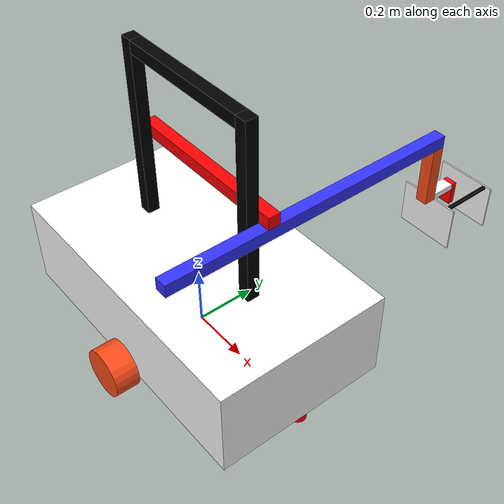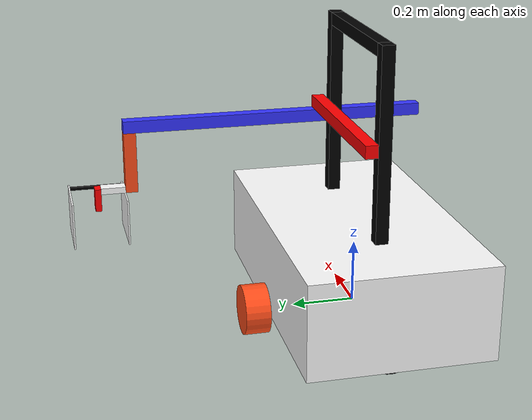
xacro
<?xml version="1.0"?>
<robot xmlns:xacro="http://www.ros.org/wiki/xacro"  name="robot">

    <xacro:include filename="robot_core.xacro" />
    <xacro:include filename="gazebo_control.xacro" />
    <xacro:include filename="lidar.xacro" />
    <xacro:include filename="slider_z_con.xacro" />
    <xacro:include filename="slider_y_con.xacro" />
    <xacro:include filename="airbrush_con.xacro" />

    <!--xacro:drive_controller/-->
    <ros2_control name="gripper_robot_gazebo_system" type="system">
        <hardware>
            <plugin>gazebo_ros2_control/GazeboSystem</plugin>
        </hardware>
        <xacro:sliderz/>
        <xacro:slidery/>
        <xacro:airbrush/>
    </ros2_control>
    <xacro:robot_controller/>
</robot>

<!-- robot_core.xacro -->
<robot xmlns:xacro="http://www.ros.org/wiki/xacro" >
    <xacro:include filename="inertial_macros.xacro" />

    <material name="white">
        <color rgba="1 1 1 1" />
    </material>

    <material name="orange">
        <color rgba="1 0.3 0.1 1"/>
    </material>

    <material name="blue">Z
        <color rgba="0.2 0.2 1 1"/>
    </material>

    <material name="black">
        <color rgba="0 0 0 1"/>
    </material>

    <material name="red">
        <color rgba="1 0 0 1"/>
    </material>

    <!-- BASE LINK -->

    <link name="base_link">

    </link>

    <joint name="chassis_joint" type="fixed">
        <parent link="base_link"/>
        <child link="body"/>
        <origin xyz="0 0 0"/>
    </joint>

    <link name="body">
        <visual>
            <origin xyz="0 0 0.15" rpy="0 0 0"/>
            <geometry>
                <box size="1 0.58 0.3"/>
            </geometry>
            <material name="white"/>
        </visual>
        <collision>
            <origin xyz="0 0 0.15" rpy="0 0 0"/>
            <geometry>
                <box size="1 0.58 0.3"/>
            </geometry>
        </collision>
        <xacro:inertial_box mass="30" x="1" y="0.58" z="0.3">
            <origin xyz="0 0 0.15" rpy="0 0 0"/>
        </xacro:inertial_box>
    </link>
    <gazebo reference="body">
        <material>Gazebo/White</material>
    </gazebo>

    <!-- LINEAR GUIDE FRAME -->

    <joint name="linear_front_joint" type="fixed">
        <parent link="body"/>
        <child link="linear_front"/>
        <origin xyz="0.25 0 0.3"/>
    </joint>

    <link name="linear_front">
        <visual>
            <origin xyz="0 0 0.3" rpy="0 0 0"/>
            <geometry>
                <box size="0.04 0.04 0.6"/>
            </geometry>
            <material name="black"/>
        </visual>
        <collision>
            <origin xyz="0 0 0.3" rpy="0 0 0"/>
            <geometry>
                <box size="0.04 0.04 0.6"/>
            </geometry>
        </collision>
        <xacro:inertial_box mass="0.5" x="0.04" y="0.04" z="0.6">
            <origin xyz="0 0 0.3" rpy="0 0 0"/>
        </xacro:inertial_box>
    </link>
    <gazebo reference="linear_front">
        <material>Gazebo/Black</material>
    </gazebo>

    <joint name="linear_back_joint" type="fixed">
        <parent link="body"/>
        <child link="linear_back"/>
        <origin xyz="-0.25 0 0.3"/>
    </joint>

    <link name="linear_back">
        <visual>
            <origin xyz="0 0 0.3" rpy="0 0 0"/>
            <geometry>
                <box size="0.04 0.04 0.6"/>
            </geometry>
            <material name="black"/>
        </visual>
        <collision>
            <origin xyz="0 0 0.3" rpy="0 0 0"/>
            <geometry>
                <box size="0.04 0.04 0.6"/>
            </geometry>
        </collision>
        <xacro:inertial_box mass="0.5" x="0.04" y="0.04" z="0.6">
            <origin xyz="0 0 0.3" rpy="0 0 0"/>
        </xacro:inertial_box>
    </link>
    <gazebo reference="linear_back">
        <material>Gazebo/Black</material>
    </gazebo>

    <joint name="linear_top_joint" type="fixed">
        <parent link="body"/>
        <child link="linear_top"/>
        <origin xyz="0 0 0.88"/>
    </joint>

    <link name="linear_top">
        <visual>
            <origin xyz="0 0 0" rpy="0 0 0"/>
            <geometry>
                <box size="0.46 0.04 0.04"/>
            </geometry>
            <material name="black"/>
        </visual>
        <collision>
            <origin xyz="0 0 0" rpy="0 0 0"/>
            <geometry>
                <box size="0.46 0.04 0.04"/>
            </geometry>
        </collision>
        <xacro:inertial_box mass="0.25" x="0.46" y="0.04" z="0.04">
            <origin xyz="0 0 0" rpy="0 0 0"/>
        </xacro:inertial_box>
    </link>
    <gazebo reference="linear_top">
        <material>Gazebo/Black</material>
    </gazebo>

    <!-- LINEAR SLIDER -->

    <joint name="slider_z_joint" type="prismatic">
        <parent link="linear_back"/>
        <child link="slider_z"/>
        <origin xyz="0 0.02 0.02"/>
        <axis xyz="0 0 1"/>
	    <limit lower="0.04" upper="0.5" velocity="0.1" effort="1" />
        <dynamics damping="1" friction="10"/>
    </joint>

    <link name="slider_z">
        <visual>
            <origin xyz="0.27 0.02 0" rpy="0 0 0"/>
            <geometry>
                <box size="0.58 0.04 0.04"/>
            </geometry>
            <material name="red"/>
        </visual>
        <collision>
            <origin xyz="0.27 0.02 0" rpy="0 0 0"/>
            <geometry>
                <box size="0.58 0.04 0.04"/>
            </geometry>
        </collision>
        <xacro:inertial_box mass="0.5" x="0.58" y="0.04" z="0.04">
            <origin xyz="0.27 0.02 0" rpy="0 0 0"/>
        </xacro:inertial_box>
    </link>
    <gazebo reference="slider_z">
        <material>Gazebo/Red</material>
    </gazebo>

    <joint name="slider_y_joint" type="prismatic">
        <parent link="slider_z"/>
        <child link="slider_y"/>
        <origin xyz="0.52 0.02 0"/>
        <axis xyz="0 1 0"/>
	    <limit lower="0.15" upper="0.66" velocity="0.1" effort="1" />
        <dynamics damping="1" friction="1"/>
    </joint>

    <link name="slider_y">
        <visual>
            <origin xyz="0.02 -0.25 -0.04" rpy="0 0 0"/>
            <geometry>
                <box size="0.04 1 0.04"/>
            </geometry>
            <material name="blue"/>
        </visual>
        <collision>
            <origin xyz="0.02 -0.25 -0.04" rpy="0 0 0"/>
            <geometry>
                <box size="0.04 1 0.04"/>
            </geometry>
        </collision>
        <xacro:inertial_box mass="0.25" x="0.04" y="1" z="0.04">
            <origin xyz="0.02 -0.25 -0.04" rpy="0 0 0"/>
        </xacro:inertial_box>
    </link>
    <gazebo reference="slider_y">
        <material>Gazebo/Blue</material>
    </gazebo>

    <!-- Airbrush -->

    <joint name="airbrush_joint" type="revolute">
        <parent link="slider_y"/>
        <child link="frame"/>
        <origin xyz="0.02 0.23 -0.06" />
        <axis xyz="0 0 1"/>
        <limit lower="${-pi/4}" upper="${pi/4}" velocity="0.1" effort="100" />
        <dynamics damping="1" friction="0"/>
    </joint>

    <link name="frame">
        <visual>
            <origin xyz="0 0 -0.1" rpy="0 0 0"/>
            <geometry>
                <box size="0.04 0.04 0.2"/>
            </geometry>
            <material name="orange"/>
        </visual>
        <collision>
            <origin xyz="0 0 -0.1" rpy="0 0 0"/>
            <geometry>
                <box size="0.04 0.04 0.2"/>
            </geometry>
        </collision>
        <xacro:inertial_box mass="0.005" x="0.04" y="0.04" z="0.2">
            <origin xyz="0 0 -0.1" rpy="0 0 0"/>
        </xacro:inertial_box>
    </link>
    <gazebo reference="frame">
        <material>Gazebo/Orange</material>
    </gazebo>

    <joint name="plate1_joint" type="fixed">
        <parent link="frame"/>
        <child link="plate1"/>
        <origin xyz="0 0 -0.2" rpy="0 0 0"/>
    </joint>

    <link name="plate1">
        <visual>
            <origin xyz="0 0.06 0.01" rpy="0 0 0"/>
            <geometry>
                <box size="0.04 0.08 0.02"/>
            </geometry>
            <material name="white"/>
        </visual>
        <collision>
            <origin xyz="0 0.06 0.01" rpy="0 0 0"/>
            <geometry>
                <box size="0.04 0.08 0.02"/>
            </geometry>
        </collision>
        <xacro:inertial_box mass="0.005" x="0.04" y="0.08" z="0.02">
            <origin xyz="0 0.06 0.01" rpy="0 0 0"/>
        </xacro:inertial_box>
    </link>
    <gazebo reference="plate1">
        <material>Gazebo/White</material>
    </gazebo>

    <joint name="plate2_joint" type="fixed">
        <parent link="plate1"/>
        <child link="plate2"/>
        <origin xyz="0 0 0" rpy="0 0 0"/>
    </joint>

    <link name="plate2">
        <visual>
            <origin xyz="0 0.0225 -0.075" rpy="0 0 0"/>
            <geometry>
                <box size="0.2 0.005 0.15"/>
            </geometry>
            <material name="white"/>
        </visual>
        <collision>
            <origin xyz="0 0.0225 -0.075" rpy="0 0 0"/>
            <geometry>
                <box size="0.2 0.005 0.15"/>
            </geometry>
        </collision>
        <xacro:inertial_box mass="0.005" x="0.2" y="0.005" z="0.15">
            <origin xyz="0 0.0225 -0.075" rpy="0 0 0"/>
        </xacro:inertial_box>
    </link>
    <gazebo reference="plate2">
        <material>Gazebo/Black</material>
    </gazebo>

    <joint name="plate3_joint" type="fixed">
        <parent link="plate1"/>
        <child link="plate3"/>
        <origin xyz="0 0 0" rpy="0 0 0"/>
    </joint>

    <link name="plate3">
        <visual>
            <origin xyz="0 0.1975 -0.075" rpy="0 0 0"/>
            <geometry>
                <box size="0.2 0.005 0.15"/>
            </geometry>
            <material name="white"/>
        </visual>
        <collision>
            <origin xyz="0 0.1975 -0.075" rpy="0 0 0"/>
            <geometry>
                <box size="0.2 0.005 0.15"/>
            </geometry>
        </collision>
        <xacro:inertial_box mass="0.005" x="0.2" y="0.005" z="0.15">
            <origin xyz="0 0.1975 -0.075" rpy="0 0 0"/>
        </xacro:inertial_box>
    </link>
    <gazebo reference="plate3">
        <material>Gazebo/Black</material>
    </gazebo>

    <joint name="plate4_joint" type="fixed">
        <parent link="plate1"/>
        <child link="plate4"/>
        <origin xyz="0 0 0" rpy="0 0 0"/>
    </joint>

    <link name="plate4">
        <visual>
            <origin xyz="0.075 0.11 -0.005" rpy="0 0 0"/>
            <geometry>
                <box size="0.01 0.17 0.01"/>
            </geometry>
            <material name="black"/>
        </visual>
        <collision>
            <origin xyz="0.075 0.11 -0.005" rpy="0 0 0"/>
            <geometry>
                <box size="0.01 0.17 0.01"/>
            </geometry>
        </collision>
        <xacro:inertial_box mass="0.005" x="0.01" y="0.17" z="0.01">
            <origin xyz="0.075 0.11 -0.005" rpy="0 0 0"/>
        </xacro:inertial_box>
    </link>
    <gazebo reference="plate4">
        <material>Gazebo/Black</material>
    </gazebo>

    <joint name="plate5_joint" type="fixed">
        <parent link="plate1"/>
        <child link="plate5"/>
        <origin xyz="0 0 0" rpy="0 0 0"/>
    </joint>

    <link name="plate5">
        <visual>
            <origin xyz="0 0.11 -0.02" rpy="0 0 0"/>
            <geometry>
                <box size="0.04 0.02 0.075"/>
            </geometry>
            <material name="red"/>
        </visual>
        <collision>
            <origin xyz="0 0.11 -0.02" rpy="0 0 0"/>
            <geometry>
                <box size="0.04 0.02 0.075"/>
            </geometry>
        </collision>
        <xacro:inertial_box mass="0.005" x="0.04" y="0.02" z="0.075">
            <origin xyz="0 0.11 -0.02" rpy="0 0 0"/>
        </xacro:inertial_box>
    </link>
    <gazebo reference="plate5">
        <material>Gazebo/Red</material>
    </gazebo>

    <!-- LEFT WHEEL -->

    <joint name="left_wheel_joint" type="continuous">
        <parent link="base_link"/>
        <child link="left_wheel"/>
        <origin xyz="0 0.33 0" rpy="-${pi/2} 0 0"/>
        <axis xyz="0 0 1"/>
    </joint>

    <link name="left_wheel">
        <visual>
            <geometry>
                <cylinder length="0.08" radius="0.08" />/>
            </geometry>
            <material name="orange"/>
        </visual>
        <collision>
            <geometry>
                <cylinder length="0.08" radius="0.08" />/>
            </geometry>
        </collision>
        <xacro:inertial_cylinder mass="0.5" length="0.08" radius="0.08">
            <origin xyz="0 0 0" rpy="0 0 0"/>
        </xacro:inertial_cylinder>
    </link>
    <gazebo reference="left_wheel">
        <material>Gazebo/Orange</material>
    </gazebo>

    <!-- RIGHT WHEEL -->

    <joint name="right_wheel_joint" type="continuous">
        <parent link="base_link"/>
        <child link="right_wheel"/>
        <origin xyz="0 -0.33 0" rpy="${pi/2} 0 0"/>
        <axis xyz="0 0 -1"/>
    </joint>

    <link name="right_wheel">
        <visual>
            <geometry>
                <cylinder length="0.08" radius="0.08" />/>
            </geometry>
            <material name="orange"/>
        </visual>
        <collision>
            <geometry>
                <cylinder length="0.08" radius="0.08" />/>
            </geometry>
        </collision>
        <xacro:inertial_cylinder mass="0.5" length="0.08" radius="0.08">
            <origin xyz="0 0 0" rpy="0 0 0"/>
        </xacro:inertial_cylinder>
    </link>
    <gazebo reference="right_wheel">
        <material>Gazebo/Orange</material>
    </gazebo>

    <!-- CASTER WHEEL FRONT -->

    <joint name="caster_wheel_front_joint" type="fixed">
        <parent link="body"/>
        <child link="caster_wheel_front"/>
        <origin xyz="0.35 0 0" rpy="0 0 0"/>
    </joint>

    <link name="caster_wheel_front">
        <visual>
            <geometry>
                <sphere radius="0.08" />
            </geometry>
            <material name="black"/>
        </visual>
        <collision>
            <geometry>
                <sphere radius="0.08" />
            </geometry>
        </collision>
        <xacro:inertial_sphere mass="0.5" radius="0.08">
            <origin xyz="0 0 0" rpy="0 0 0"/>
        </xacro:inertial_sphere>
    </link>
    <gazebo reference="caster_wheel_front">
        <material>Gazebo/Black</material>
        <mu1 value="0.001"/>
        <mu2 value="0.001"/>
    </gazebo>

    <!-- CASTER WHEEL BACK -->

    <joint name="caster_wheel_back_joint" type="fixed">
        <parent link="body"/>
        <child link="caster_wheel_back"/>
        <origin xyz="-0.35 0 0" rpy="0 0 0"/>
    </joint>

    <link name="caster_wheel_back">
        <visual>
            <geometry>
                <sphere radius="0.08" />
            </geometry>
            <material name="black"/>
        </visual>
        <collision>
            <geometry>
                <sphere radius="0.08" />
            </geometry>
        </collision>
        <xacro:inertial_sphere mass="0.5" radius="0.08">
            <origin xyz="0 0 0" rpy="0 0 0"/>
        </xacro:inertial_sphere>
    </link>
    <gazebo reference="caster_wheel_back">
        <material>Gazebo/Black</material>
        <mu1 value="0.001"/>
        <mu2 value="0.001"/>
    </gazebo>

</robot>

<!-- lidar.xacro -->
<robot xmlns:xacro="http://www.ros.org/wiki/xacro" >

    <joint name="laser_joint" type="fixed">
        <parent link="body"/>
        <child link="laser_frame"/>
        <origin xyz="0.475 0 -0.0125" rpy="0 0 0"/>
    </joint>

    <link name="laser_frame">
        <visual>
            <geometry>
                <cylinder radius="0.025" length="0.025"/>
            </geometry>
            <material name="red"/>
        </visual>
        <collision>
            <geometry>
                <cylinder radius="0.025" length="0.025"/>
            </geometry>
        </collision>
        <xacro:inertial_cylinder mass="0.1" length="0.025" radius="0.025">
            <origin xyz="0.475 0 -0.0125" rpy="0 0 0"/>
        </xacro:inertial_cylinder>
    </link>

    <gazebo reference="laser_frame">
        <material>Gazebo/Red</material>

        <sensor name="laser" type="ray">
            <pose> 0 0 0 0 0 0 </pose>
            <visualize>true</visualize>
            <update_rate>10</update_rate>
            <ray>
                <scan>
                    <horizontal>
                        <samples>360</samples>
                        <min_angle>-3.14</min_angle>
                        <max_angle>3.14</max_angle>
                    </horizontal>
                </scan>
                <range>
                    <min>0.3</min>
                    <max>12</max>
                </range>
            </ray>

            <plugin name="laser_controller" filename="libgazebo_ros_ray_sensor.so">
                <ros>
                    <argument>~/out:=scan</argument>
                </ros>
                <output_type>sensor_msgs/LaserScan</output_type>
                <frame_name>laser_frame</frame_name>
            </plugin>
        </sensor>
    </gazebo>

</robot>
